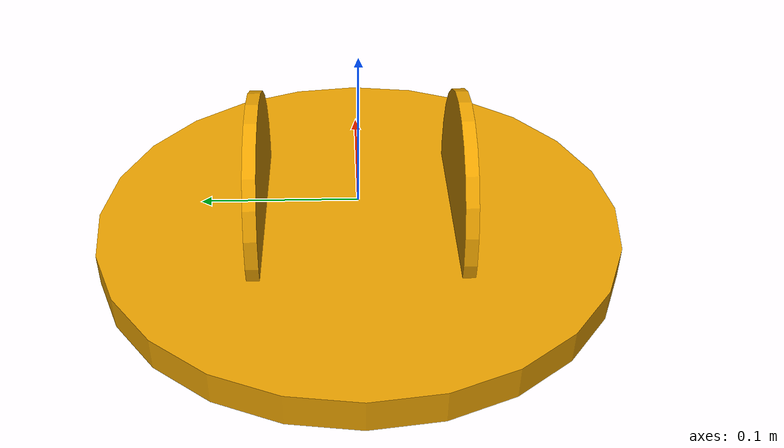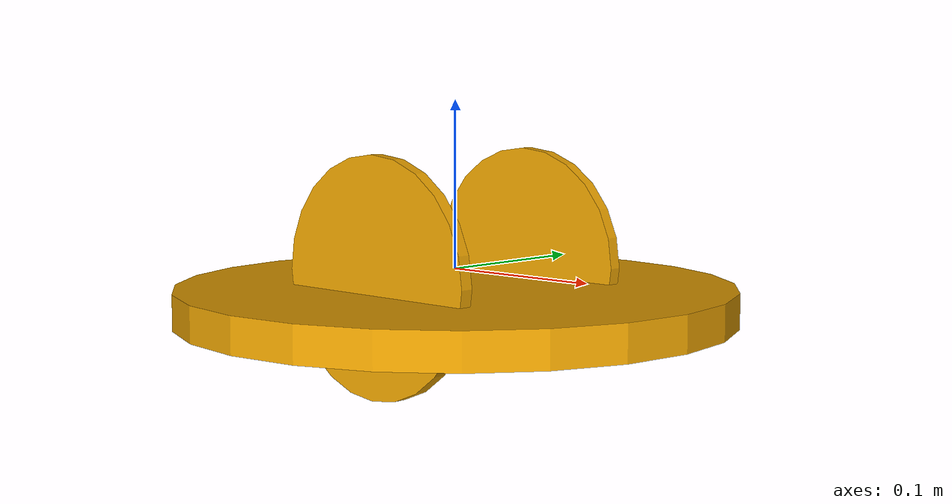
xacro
<?xml version='1.0'?>

<robot name="rslk" xmlns:xacro="http://www.ros.org/wiki/xacro">

  <link name='chassis'>
    <pose>0 0 0.0 0 0 0</pose>

    <inertial>
      <mass value="15.0"/>
      <origin xyz="0.0 0 0" rpy=" 0 0 0"/>
      <inertia
          ixx="0.1" ixy="0" ixz="0"
          iyy="0.1" iyz="0"
          izz="0.1"
      />
    </inertial>

    <collision name='chassis_collision'>
      <origin xyz="0 0 -0.02" rpy=" 0 0 0"/>
      <geometry>
        <cylinder length="0.020" radius="0.166"/>
      </geometry>
    </collision>

    <visual name='chassis_visual'>
      <origin xyz="0 0 -0.02" rpy=" 0 0 0"/>
      <geometry>
       <cylinder length="0.021" radius="0.167"/>
      </geometry>
    </visual>

    <collision name='back_caster_collision'>
      <origin xyz="-0.1 0 -0.04" rpy=" 0 0 0"/>
      <geometry>
        <sphere radius="0.0299"/>
      </geometry>
    </collision>

    <visual name='back_caster_visual'>
      <origin xyz="-0.1 0 -0.04" rpy=" 0 0 0"/>
      <geometry>
        <sphere radius="0.03"/>
      </geometry>
    </visual>

    <collision name='right_wheel_collision'>
      <origin xyz="0 0.063 0" rpy=" 0 1.5707 1.5707"/>
      <geometry>
        <cylinder length="0.00799" radius="0.0699"/>
      </geometry>
    </collision>

    <visual name='right_wheel_visual'>
      <origin xyz="0.0 0.064 0.0" rpy="0 1.5707 1.5707"/>
      <geometry>
       <cylinder length="0.008" radius="0.07"/>
      </geometry>
    </visual>

    <collision name='left_wheel_collision'>
      <origin xyz="0 -0.063 0" rpy=" 0 1.5707 1.5707"/>
      <geometry>
        <cylinder length="0.00799" radius="0.0699"/>
      </geometry>
    </collision>

    <visual name='left_wheel_visual'>
      <origin xyz="0.0 -0.064 0.0" rpy="0 1.5707 1.5707"/>
      <geometry>
       <cylinder length="0.008" radius="0.07"/>
      </geometry>
    </visual>

  </link>

</robot>
